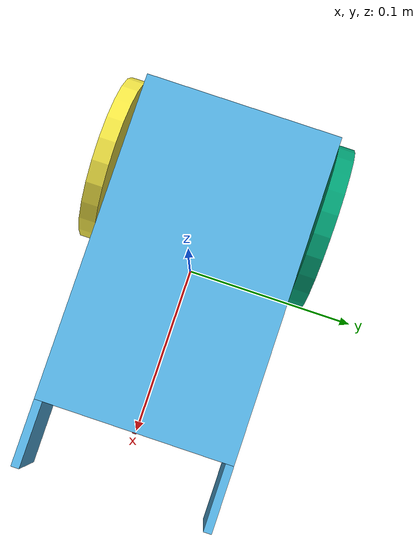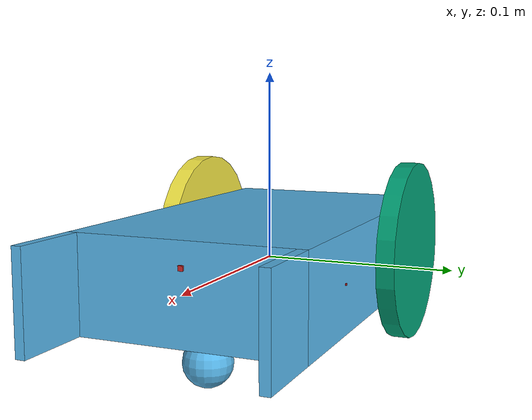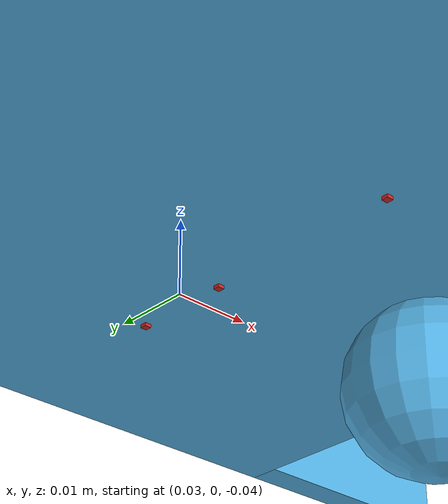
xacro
<?xml version="1.0"?>

<!-- choose a name space and start xacro -->
<robot xmlns:xacro="http://wwww.ros.org/wiki/xacro">

 <!-- Start by including all the required xacro files which hold the macros -->
 <xacro:include filename="$(find diffdriverobot)/models/diff_drive/diff_drive.gazebo" />
 <xacro:include filename="$(find diffdriverobot)/models/diff_drive/materials.xacro" />
 <xacro:include filename="$(find diffdriverobot)/models/diff_drive/macros.xacro" />
 <xacro:include filename="$(find diffdriverobot)/models/diff_drive/parameter.xacro" />

 <!-- Create a dummy link as a base link -->
  <link name='base_link'>
    <pose>0 0 0 0 0 0</pose>
  </link>
  <joint type="fixed" name="base_link_to_chassis">
    <child link="chassis_link"/>
    <child link="chassis_link"/>
    <parent link="base_link"/>
  </joint>

 <!-- Define the chassis of  the differential drive robot, which is our base -->
 <link name='chassis_link'>
    <pose>0 0 0 0 0 0</pose>
    <!-- Define inertial system for the chassis -->
    <inertial>
      <mass value="${m_chassis}"/>
      <xacro:box_inertia m="${m_chassis}" x="${x_chassis}" y="${y_chassis}" z="${z_chassis}"/>
    </inertial>
    <!-- Define collision surrounding box -->
    <collision name='collision'>>
      <origin xyz="0 ${r_wheel/2} 0" rpy="0 0 0"/>
      <geometry>
       <box size="${x_chassis} ${y_chassis} ${z_chassis}"/>
      </geometry>
    </collision>
    <!-- Define visualization structure -->
    <visual name='base_link_visual'>
	    <origin xyz="0 0 0" rpy="0 0 0"/>
	    <geometry>
         <box size="${x_chassis} ${y_chassis} ${z_chassis}"/>
      </geometry>
    </visual>

    <!-- Add the castor wheel! Here we simply assume complete slippage, thus we do not require that it rotates! -->
    <collision name='caster_collision'>
      <origin xyz="${-(r_wheel/2)+x_chassis/2} 0 ${-z_chassis+cr_wheel}" rpy="0 0 0"/>
      <geometry>
       <sphere radius="${cr_wheel}"/>
      </geometry>
      <surface>
       <friction>
        <ode>
         <mu>0</mu>
         <mu2>0</mu2>
         <slip1>1.0</slip1>
         <slip2>1.0</slip2>
        </ode>
       </friction>
      </surface>
    </collision>
    <visual name='caster_visual'>
	    <origin xyz="${-(r_wheel/2)+x_chassis/2} 0 ${-z_chassis+cr_wheel}" rpy="0 0 0"/>
    	<geometry>
        <sphere radius="${cr_wheel}"/>
      </geometry>
    </visual>
    <inertial>
      <mass value="${cm_wheel}"/>
      <castor_inertia m="${cm_wheel}" r="${cr_wheel}" />
    </inertial>
   <!-- Adding the left clamp -->
   <collision name='left_clamp_collision'>
      <origin xyz="${(x_left_clamp/2)+x_chassis/2} ${y_chassis/2-y_left_clamp/2} 0" rpy="0 0 0"/>
      <geometry>
       <box size="${x_left_clamp} ${y_left_clamp} ${z_left_clamp}"/>
      </geometry>
      <surface>
       <friction>
        <ode>
         <mu>0</mu>
         <mu2>0</mu2>
         <slip1>0</slip1>
         <slip2>0</slip2>
        </ode>
       </friction>
      </surface>
    </collision>
    <visual name='left_clamp_visual'>
	    <origin xyz="${(x_left_clamp/2)+x_chassis/2} ${y_chassis/2-y_left_clamp/2} 0" rpy="0 0 0"/>
    	<geometry>
        <box size="${x_left_clamp} ${y_left_clamp} ${z_left_clamp}"/>
      </geometry>
    </visual>
    <inertial>
      <mass value="${m_left_clamp}"/>
      <xacro:box_inertia m="${m_left_clamp}" x="${x_left_clamp}" y="${y_left_clamp}" z="${z_left_clamp}"/>
    </inertial>

   <!-- Adding the right clamp -->
   <collision name='right clamp_collision'>
      <origin xyz="${(x_right_clamp/2)+x_chassis/2} ${-(y_chassis/2)+y_right_clamp/2} 0" rpy="0 0 0"/>
      <geometry>
       <box size="${x_right_clamp} ${y_right_clamp} ${z_right_clamp}"/>
      </geometry>
      <surface>
       <friction>
        <ode>
         <mu>0</mu>
         <mu2>0</mu2>
         <slip1>0</slip1>
         <slip2>0</slip2>
        </ode>
       </friction>
      </surface>
    </collision>
    <visual name='caster_visual'>
	    <origin xyz="${(x_right_clamp/2)+x_chassis/2} ${-(y_chassis/2)+y_right_clamp/2} 0" rpy="0 0 0"/>
    	<geometry>
        <box size="${x_right_clamp} ${y_right_clamp} ${z_right_clamp}"/>
      </geometry>
    </visual>
    <inertial>
      <mass value="${m_right_clamp}"/>
      <xacro:box_inertia m="${m_right_clamp}" x="${x_right_clamp}" y="${y_right_clamp}" z="${z_right_clamp}"/>
    </inertial>

  </link>

  <!-- Add the wheels for the robot -->
  <link name="left_wheel">
    <collision name="lcollision">
      <origin xyz="0 0 0" rpy="0 1.5707 1.5707"/>
      <geometry>
       <cylinder radius="${r_wheel}" length="${h_wheel}"/>
      </geometry>
      <surface>
       <friction>
        <ode>
         <mu>1.0</mu>
         <mu2>1.0</mu2>
         <slip1>0.0</slip1>
         <slip2>0.0</slip2>
        </ode>
       </friction>
      </surface>
    </collision>
    <visual name='left_wheel_visual'>
	    <origin xyz="0 0 0" rpy="0 1.5707 1.5707"/>
    	<geometry>
        <cylinder radius="${r_wheel}" length="${h_wheel}"/>
      </geometry>
    </visual>
    <inertial>
      <origin xyz="0 0 0" rpy="0 1.5707 1.5707"/>
      <mass value="${m_wheel}"/>
      <cylinder_inertia m="${m_wheel}" r="${r_wheel}" h="${h_wheel}"/>
    </inertial>
  </link>

  <link name="right_wheel">
    <collision name="rcollision">
      <origin xyz="0 0 0" rpy="0 1.5707 1.5707"/>
      <geometry>
       <cylinder radius="${r_wheel}" length="${h_wheel}"/>
      </geometry>
      <surface>
       <friction>
        <ode>
         <mu>1.0</mu>
         <mu2>1.0</mu2>
         <slip1>0.0</slip1>
         <slip2>0.0</slip2>
        </ode>
       </friction>
      </surface>
    </collision>
    <visual name="right_wheel_visual">
	    <origin xyz="0 0 0" rpy="0 1.5707 1.5707"/>
    	<geometry>
        <cylinder radius="${r_wheel}" length="${h_wheel}"/>
      </geometry>
    </visual>
    <inertial>
      <origin xyz="0 0 0" rpy="0 1.5707 1.5707"/>
      <mass value="${m_wheel}"/>
      <cylinder_inertia m="${m_wheel}" r="${r_wheel}" h="${h_wheel}"/>
    </inertial>
  </link>

  <!-- Set joints for the wheels which can be controlled over ROS -->
  <joint type="continuous" name="left_wheel_hinge">
    <origin xyz="${-x_chassis/4} ${y_chassis/2+h_wheel/2} ${r_wheel/2-z_chassis/2}" rpy="0 0 0"/>
    <child link="left_wheel"/>
    <parent link="base_link"/>
    <axis xyz="0 1 0" rpy="0 0 0"/>
    <limit effort="100" velocity="100"/>
    <joint_properties damping="0.0" friction="0.0"/>
  </joint>
  <joint type="continuous" name="right_wheel_hinge">
    <origin xyz="${-x_chassis/4} ${-y_chassis/2-h_wheel/2} ${r_wheel/2-z_chassis/2}" rpy="0 0 0"/>
    <child link="right_wheel"/>
    <parent link="base_link"/>
    <axis xyz="0 1 0" rpy="0 0 0"/>
    <limit effort="100" velocity="100"/>
    <joint_properties damping="0.0" friction="0.0"/>
  </joint>

  <joint name="camera_joint" type="fixed">
    <axis xyz="0 1 0" />
    <origin xyz="${x_chassis/2} 0 ${z_chassis/4}" rpy="0 0 0"/>
    <parent link="base_link"/>
    <child link="camera_link"/>
  </joint>

  <joint name="laser_joint1" type="fixed">
    <axis xyz="1 0 0" />
    <origin xyz="${x_chassis/4} ${y_chassis/2} ${r_wheel/2-z_chassis/2}" rpy="0 0 1.570896"/>
    <parent link="base_link"/>
    <child link="laser_link1"/>
  </joint>

  <joint name="laser_joint2" type="fixed">
    <axis xyz="0 0 1" />
    <origin xyz="${x_chassis/4} ${y_chassis/4} ${-z_chassis+2*cr_wheel}" rpy="0 1.570896 0"/>
    <parent link="base_link"/>
    <child link="laser_link2"/>
  </joint>

  <joint name="laser_joint3" type="fixed">
    <axis xyz="0 0 1" />
    <origin xyz="${x_chassis/4} ${y_chassis/8} ${-z_chassis+2*cr_wheel}" rpy="0 1.570896 0"/>
    <parent link="base_link"/>
    <child link="laser_link3"/>
  </joint>

  <joint name="laser_joint4" type="fixed">
    <axis xyz="0 0 1" />
    <origin xyz="${x_chassis/4} ${-y_chassis/8} ${-z_chassis+2*cr_wheel}" rpy="0 1.570896 0"/>
    <parent link="base_link"/>
    <child link="laser_link4"/>
  </joint>

  <joint name="laser_joint5" type="fixed">
    <axis xyz="0 0 1" />
    <origin xyz="${x_chassis/4} ${-y_chassis/4} ${-z_chassis+2*cr_wheel}" rpy="0 1.570896 0"/>
    <parent link="base_link"/>
    <child link="laser_link5"/>
  </joint>

  <joint name="laser_joint6" type="fixed">
    <axis xyz="1 0 0" />
    <origin xyz="${x_chassis/4} ${-y_chassis/2} ${r_wheel/2-z_chassis/2}" rpy="0 0 -1.570896"/>
    <parent link="base_link"/>
    <child link="laser_link6"/>
  </joint>

  <!-- Camera -->
  <link name="camera_link">
    <collision>
      <origin xyz="0 0 0" rpy="0 0 0"/>
      <geometry>
    <box size="${camera_link} ${camera_link} ${camera_link}"/>
      </geometry>
    </collision>

    <visual>
      <origin xyz="0 0 0" rpy="0 0 0"/>
      <geometry>
    <box size="${camera_link} ${camera_link} ${camera_link}"/>
      </geometry>
      <material name="red"/>
    </visual>

    <inertial>
      <mass value="0.1" />
      <origin xyz="0 0 0" rpy="0 0 0"/>
      <inertia ixx="1e-6" ixy="0" ixz="0" iyy="1e-6" iyz="0" izz="1e-6" />
    </inertial>
  </link>

  <!-- Lasers -->

  <link name="laser_link1">
    <collision>
      <origin xyz="0 0 0" rpy="0 0 0"/>
      <geometry>
    <box size="${laser_link} ${laser_link} ${laser_link}"/>
      </geometry>
    </collision>

    <visual>
      <origin xyz="0 0 0" rpy="0 0 0"/>
      <geometry>
    <box size="${laser_link} ${laser_link} ${laser_link}"/>
      </geometry>
      <material name="red"/>
    </visual>

    <inertial>
      <mass value="0.1" />
      <origin xyz="0 0 0" rpy="0 0 0"/>
      <inertia ixx="1e-6" ixy="0" ixz="0" iyy="1e-6" iyz="0" izz="1e-6" />
    </inertial>
  </link>

  <link name="laser_link2">
    <collision>
      <origin xyz="0 0 0" rpy="0 0 0"/>
      <geometry>
    <box size="${laser_link} ${laser_link} ${laser_link}"/>
      </geometry>
    </collision>

    <visual>
      <origin xyz="0 0 0" rpy="0 0 0"/>
      <geometry>
    <box size="${laser_link} ${laser_link} ${laser_link}"/>
      </geometry>
      <material name="red"/>
    </visual>

    <inertial>
      <mass value="0.04" />
      <origin xyz="0 0 0" rpy="0 0 0"/>
      <inertia ixx="1e-6" ixy="0" ixz="0" iyy="1e-6" iyz="0" izz="1e-6" />
    </inertial>
  </link>

  <link name="laser_link3">
    <collision>
      <origin xyz="0 0 0" rpy="0 0 0"/>
      <geometry>
    <box size="${laser_link} ${laser_link} ${laser_link}"/>
      </geometry>
    </collision>

    <visual>
      <origin xyz="0 0 0" rpy="0 0 0"/>
      <geometry>
    <box size="${laser_link} ${laser_link} ${laser_link}"/>
      </geometry>
      <material name="red"/>
    </visual>

    <inertial>
      <mass value="0.04" />
      <origin xyz="0 0 0" rpy="0 0 0"/>
      <inertia ixx="1e-6" ixy="0" ixz="0" iyy="1e-6" iyz="0" izz="1e-6" />
    </inertial>
  </link>

  <link name="laser_link4">
    <collision>
      <origin xyz="0 0 0" rpy="0 0 0"/>
      <geometry>
    <box size="${laser_link} ${laser_link} ${laser_link}"/>
      </geometry>
    </collision>

    <visual>
      <origin xyz="0 0 0" rpy="0 0 0"/>
      <geometry>
    <box size="${laser_link} ${laser_link} ${laser_link}"/>
      </geometry>
      <material name="red"/>
    </visual>

    <inertial>
      <mass value="0.04" />
      <origin xyz="0 0 0" rpy="0 0 0"/>
      <inertia ixx="1e-6" ixy="0" ixz="0" iyy="1e-6" iyz="0" izz="1e-6" />
    </inertial>
  </link>

  <link name="laser_link5">
    <collision>
      <origin xyz="0 0 0" rpy="0 0 0"/>
      <geometry>
    <box size="${laser_link} ${laser_link} ${laser_link}"/>
      </geometry>
    </collision>

    <visual>
      <origin xyz="0 0 0" rpy="0 0 0"/>
      <geometry>
    <box size="${laser_link} ${laser_link} ${laser_link}"/>
      </geometry>
      <material name="red"/>
    </visual>

    <inertial>
      <mass value="0.04" />
      <origin xyz="0 0 0" rpy="0 0 0"/>
      <inertia ixx="1e-6" ixy="0" ixz="0" iyy="1e-6" iyz="0" izz="1e-6" />
    </inertial>
  </link>

  <link name="laser_link6">
    <collision>
      <origin xyz="0 0 0" rpy="0 0 0"/>
      <geometry>
    <box size="${laser_link} ${laser_link} ${laser_link}"/>
      </geometry>
    </collision>

    <visual>
      <origin xyz="0 0 0" rpy="0 0 0"/>
      <geometry>
    <box size="${laser_link} ${laser_link} ${laser_link}"/>
      </geometry>
      <material name="red"/>
    </visual>

    <inertial>
      <mass value="0.1" />
      <origin xyz="0 0 0" rpy="0 0 0"/>
      <inertia ixx="1e-6" ixy="0" ixz="0" iyy="1e-6" iyz="0" izz="1e-6" />
    </inertial>
  </link>

</robot>

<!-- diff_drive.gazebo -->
<robot xmlns:xacro="http://wwww.ros.org/wiki/xacro">
    <xacro:include filename="$(find diffdriverobot)/models/diff_drive/parameter.xacro" />

    <!-- Differential Drive controller from Gazebo -->

    <gazebo>
        <plugin name="differential_drive_controller" filename="libgazebo_ros_diff_drive.so">
            <alwaysOn>true</alwaysOn>
            <updateRate>20</updateRate>
            <leftJoint>left_wheel_hinge</leftJoint>
            <rightJoint>right_wheel_hinge</rightJoint>
            <wheelSeparation>${L_wheel*2}</wheelSeparation>
            <wheelDiameter>${r_wheel*2}</wheelDiameter>
            <torque>20</torque>
            <commandTopic>cmd_vel</commandTopic>
            <odometryTopic>odom</odometryTopic>
            <odometryFrame>odom_link</odometryFrame>
            <robotBaseFrame>base_link</robotBaseFrame>
            <legacyMode>false</legacyMode>
	    <odometrySource>world</odometrySource>
	    <publishWheelTF>true</publishWheelTF>
	    <publishOdomTF>true</publishOdomTF>
	    <publishTf>1</publishTf>
      	    <publishWheelJointState>true</publishWheelJointState>
      	    <wheelAcceleration>0</wheelAcceleration>
      	    <wheelTorque>10</wheelTorque>
      	    <rosDebugLevel>na</rosDebugLevel>
        </plugin>
    </gazebo>

    <!-- Paint the robot -->
    <gazebo reference="base_link">
        <material>Gazebo/Orange</material>
    </gazebo>

    <!-- camera -->
    <gazebo reference="camera_link">
    <sensor type="camera" name="camera1">
        <update_rate>30.0</update_rate>
        <camera name="head">
        <horizontal_fov>1.3962634</horizontal_fov>
        <image>
            <width>800</width>
            <height>800</height>
            <format>R8G8B8</format>
        </image>
        <clip>
            <near>0.02</near>
            <far>300</far>
        </clip>
        <noise>
            <type>gaussian</type>
            <!-- Noise is sampled independently per pixel on each frame.
                That pixel's noise value is added to each of its color
                channels, which at that point lie in the range [0,1]. -->
            <mean>0.0</mean>
            <stddev>0.007</stddev>
        </noise>
        </camera>
        <plugin name="camera_controller" filename="libgazebo_ros_camera.so">
        <alwaysOn>true</alwaysOn>
        <updateRate>0.0</updateRate>
        <cameraName>rrbot/camera1</cameraName>
        <imageTopicName>image_raw</imageTopicName>
        <cameraInfoTopicName>camera_info</cameraInfoTopicName>
        <frameName>camera_link</frameName>
        <hackBaseline>0.07</hackBaseline>
        <distortionK1>0.0</distortionK1>
        <distortionK2>0.0</distortionK2>
        <distortionK3>0.0</distortionK3>
        <distortionT1>0.0</distortionT1>
        <distortionT2>0.0</distortionT2>
        </plugin>
    </sensor>
    </gazebo>
    <gazebo reference="laser_link1">

      <sensor name="bot1" type="ray">
        <ray>
          <scan>
            <horizontal>
              <samples>1</samples>
              <resolution>1</resolution>
              <min_angle>-0</min_angle>
              <max_angle>0</max_angle>
            </horizontal>
          </scan>
          <range>
            <min>0.01</min>
            <max>2</max>
            <resolution>0.01</resolution>
          </range>
          <noise>
            <type>gaussian</type>
            <mean>0.0</mean>
            <stddev>0.01</stddev>
          </noise>
        </ray>
        <plugin name="lidar_plugin" filename="libgazebo_ros_laser.so">
          <robotNamespace>ddbot</robotNamespace>
          <topicName>bot1</topicName>
          <tf_prefix_>ddbot</tf_prefix_>
          <frameName>/world</frameName>
        </plugin>
        <always_on>1</always_on>
        <update_rate>20</update_rate>
        <visualize>true</visualize>
      </sensor>
    </gazebo>

    <gazebo reference="laser_link2">

      <sensor name="bot2" type="ray">
        <ray>
          <scan>
            <horizontal>
              <samples>1</samples>
              <resolution>1</resolution>
              <min_angle>-0</min_angle>
              <max_angle>0</max_angle>
            </horizontal>
          </scan>
          <range>
            <min>0.01</min>
            <max>2</max>
            <resolution>0.01</resolution>
          </range>
          <noise>
            <type>gaussian</type>
            <mean>0.0</mean>
            <stddev>0.01</stddev>
          </noise>
        </ray>
        <plugin name="lidar_plugin" filename="libgazebo_ros_laser.so">
          <robotNamespace>ddbot</robotNamespace>
          <topicName>bot2</topicName>
          <tf_prefix_>ddbot</tf_prefix_>
          <frameName>/world</frameName>
        </plugin>
        <always_on>1</always_on>
        <update_rate>20</update_rate>
        <visualize>true</visualize>
      </sensor>
    </gazebo>

    <gazebo reference="laser_link3">

      <sensor name="bot3" type="ray">
        <ray>
          <scan>
            <horizontal>
              <samples>1</samples>
              <resolution>1</resolution>
              <min_angle>-0</min_angle>
              <max_angle>0</max_angle>
            </horizontal>
          </scan>
          <range>
            <min>0.01</min>
            <max>2</max>
            <resolution>0.01</resolution>
          </range>
          <noise>
            <type>gaussian</type>
            <mean>0.0</mean>
            <stddev>0.01</stddev>
          </noise>
        </ray>
        <plugin name="lidar_plugin" filename="libgazebo_ros_laser.so">
          <robotNamespace>ddbot</robotNamespace>
          <topicName>bot3</topicName>
          <tf_prefix_>ddbot</tf_prefix_>
          <frameName>/world</frameName>
        </plugin>
        <always_on>1</always_on>
        <update_rate>20</update_rate>
        <visualize>true</visualize>
      </sensor>
    </gazebo>

    <gazebo reference="laser_link4">

      <sensor name="bot4" type="ray">
        <ray>
          <scan>
            <horizontal>
              <samples>1</samples>
              <resolution>1</resolution>
              <min_angle>-0</min_angle>
              <max_angle>0</max_angle>
            </horizontal>
          </scan>
          <range>
            <min>0.01</min>
            <max>2</max>
            <resolution>0.01</resolution>
          </range>
          <noise>
            <type>gaussian</type>
            <mean>0.0</mean>
            <stddev>0.01</stddev>
          </noise>
        </ray>
        <plugin name="lidar_plugin" filename="libgazebo_ros_laser.so">
          <robotNamespace>ddbot</robotNamespace>
          <topicName>bot4</topicName>
          <tf_prefix_>ddbot</tf_prefix_>
          <frameName>/world</frameName>
        </plugin>
        <always_on>1</always_on>
        <update_rate>20</update_rate>
        <visualize>true</visualize>
      </sensor>
    </gazebo>

    <gazebo reference="laser_link5">

      <sensor name="bot5" type="ray">
        <ray>
          <scan>
            <horizontal>
              <samples>1</samples>
              <resolution>1</resolution>
              <min_angle>-0</min_angle>
              <max_angle>0</max_angle>
            </horizontal>
          </scan>
          <range>
            <min>0.01</min>
            <max>2</max>
            <resolution>0.01</resolution>
          </range>
          <noise>
            <type>gaussian</type>
            <mean>0.0</mean>
            <stddev>0.01</stddev>
          </noise>
        </ray>
        <plugin name="lidar_plugin" filename="libgazebo_ros_laser.so">
          <robotNamespace>ddbot</robotNamespace>
          <topicName>bot5</topicName>
          <tf_prefix_>ddbot</tf_prefix_>
          <frameName>/world</frameName>
        </plugin>
        <always_on>1</always_on>
        <update_rate>20</update_rate>
        <visualize>true</visualize>
      </sensor>
    </gazebo>

    <gazebo reference="laser_link6">

      <sensor name="bot6" type="ray">
        <ray>
          <scan>
            <horizontal>
              <samples>1</samples>
              <resolution>1</resolution>
              <min_angle>-0</min_angle>
              <max_angle>0</max_angle>
            </horizontal>
          </scan>
          <range>
            <min>0.01</min>
            <max>2</max>
            <resolution>0.01</resolution>
          </range>
          <noise>
            <type>gaussian</type>
            <mean>0.0</mean>
            <stddev>0.01</stddev>
          </noise>
        </ray>
        <plugin name="lidar_plugin" filename="libgazebo_ros_laser.so">
          <robotNamespace>ddbot</robotNamespace>
          <topicName>bot6</topicName>
          <tf_prefix_>ddbot</tf_prefix_>
          <frameName>/world</frameName>
        </plugin>
        <always_on>1</always_on>
        <update_rate>20</update_rate>
        <visualize>true</visualize>
      </sensor>
    </gazebo>

</robot>

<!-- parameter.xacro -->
<robot xmlns:xacro="http://wwww.ros.org/wiki/xacro">

 <!-- Define parameter for the differential drive robot -->
 <!-- Parameter for the chassis, size [m] and mass [kg] -->
 <xacro:property name="x_chassis" value="0.2" />
 <xacro:property name="y_chassis" value="0.12" />
 <xacro:property name="z_chassis" value="0.05" />
 <xacro:property name="m_chassis" value="1.0" />

 <!-- Parameter for the chassis, size [m] and mass [kg] -->
 <xacro:property name="x_left_clamp" value="0.04" />
 <xacro:property name="y_left_clamp" value="0.005" />
 <xacro:property name="z_left_clamp" value="0.05" />
 <xacro:property name="m_left_clamp" value="0.5" />

 <!-- Parameter for the chassis, size [m] and mass [kg] -->
 <xacro:property name="x_right_clamp" value="0.04" />
 <xacro:property name="y_right_clamp" value="0.005" />
 <xacro:property name="z_right_clamp" value="0.05" />
 <xacro:property name="m_right_clamp" value="0.5" />

 <!-- Parameter for the wheels, radius [m], height [m], mass [kg], torque [Nm], wheelbase [m] -->
 <xacro:property name="r_wheel" value="0.05" />
 <xacro:property name="h_wheel" value="0.01" />
 <xacro:property name="m_wheel" value="0.30" />
 <xacro:property name="torque_wheel" value="10" />
 <xacro:property name="L_wheel" value="0.01788" />

 <!-- Parameter for the wheels, radius [m], height [m], mass [kg], torque [Nm], wheelbase [m] -->
 <xacro:property name="cr_wheel" value="0.0125" />
 <xacro:property name="cm_wheel" value="3.0" />
 <xacro:property name="ctorque_wheel" value="10" />

 <xacro:property name="camera_link" value="0.0025" /> <!-- Size of square 'camera' box -->
 <xacro:property name="laser_link" value="0.001" /> <!-- Size of square 'camera' box -->

</robot>

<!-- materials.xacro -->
<robot xmlns:xacro="http://wwww.ros.org/wiki/xacro">

 <!-- Here we define the material color we may want to use -->
 <material name="orange">
  <color rgba="${255/255} ${108/255} ${10/255} 1.0" />
 </material>
 <material name="green">
  <color rgba="${0/255} ${255/255} ${0/255} 1.0" />
 </material>

</robot>

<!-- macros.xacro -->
<robot xmlns:xacro="http://wwww.ros.org/wiki/xacro">

 <xacro:macro name="box_inertia" params="m x y z">
	<inertia
	 ixx="${m*(y*y+z*z)/12}" ixy="0" ixz="0"
	 iyy="${m*(x*x+z*z)/12}" iyz="0"
	 izz="${m*(x*x+z*z)/12}"
	/>
 </xacro:macro>

 <xacro:macro name="cylinder_inertia" params="m r h">
	<inertia
	 ixx="${m*(3*r*r+h*h)/12}" ixy="0" ixz="0"
	 iyy="${m*(3*r*r+h*h)/12}" iyz="0"
	 izz="${m*r*r/2}"
	/>
 </xacro:macro>

 <xacro:macro name="castor_inertia" params="m r">
	<inertia
	 ixx="${2*m*r*r/5}" ixy="0" ixz="0"
	 iyy="${2*m*r*r/5}" iyz="0"
	 izz="${2*m*r*r/5}"
	/>
 </xacro:macro>

</robot>
